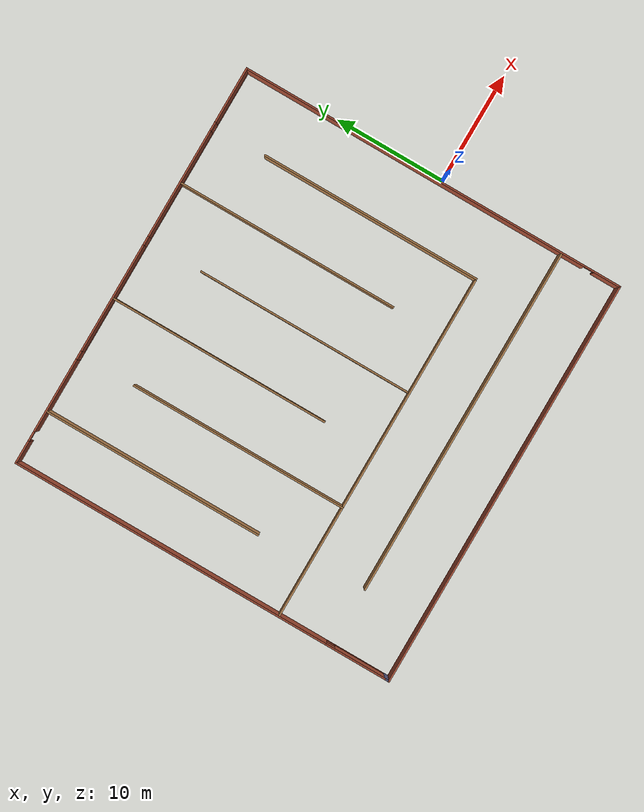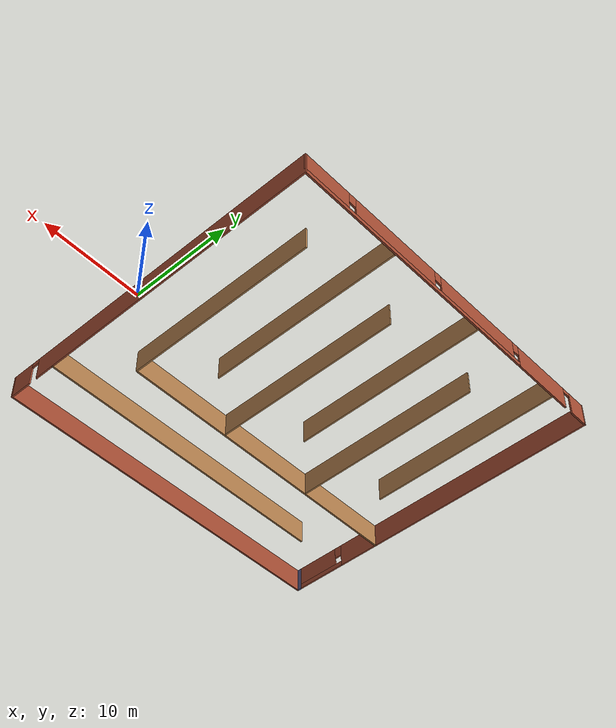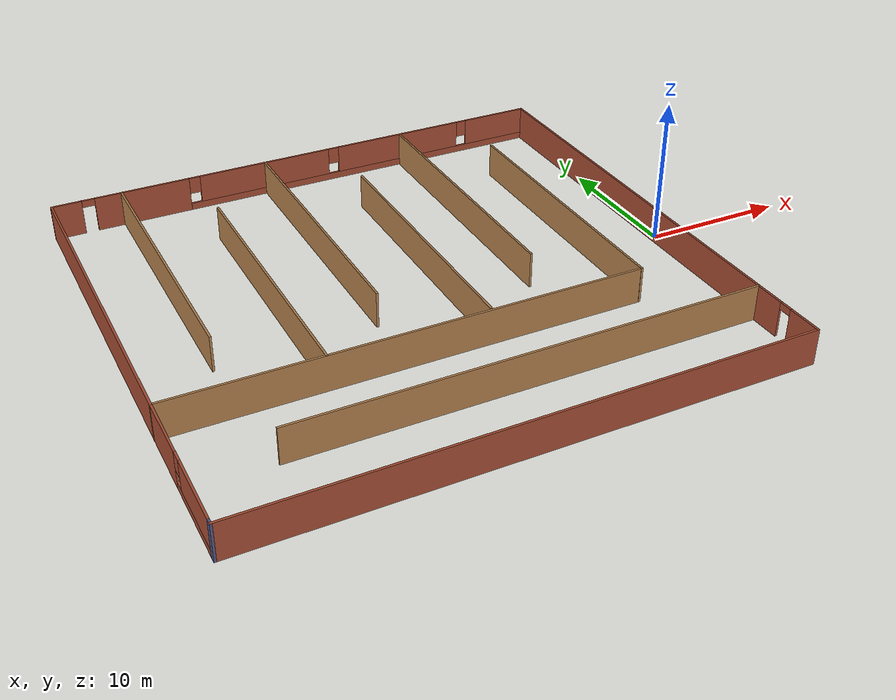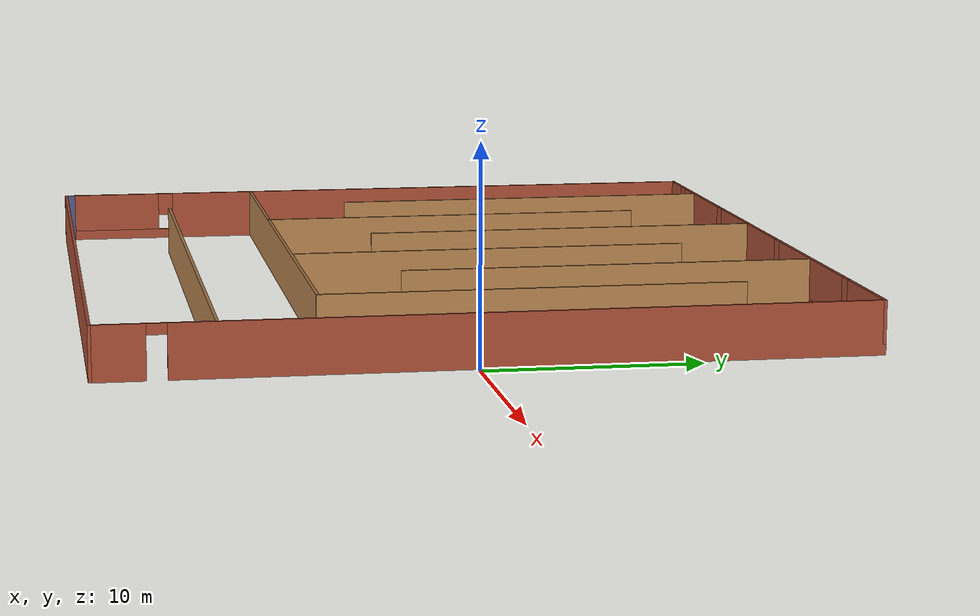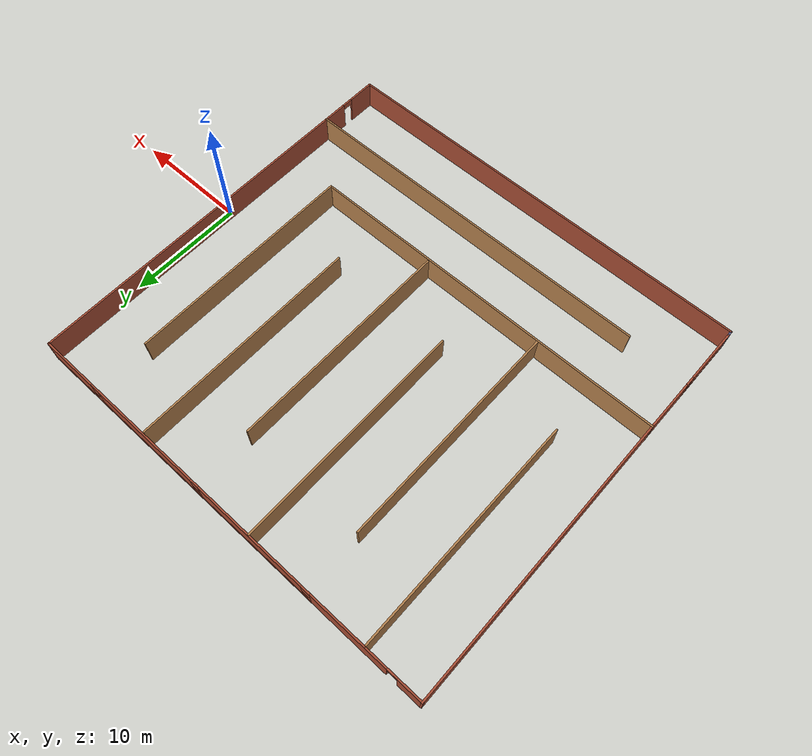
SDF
<?xml version='1.0'?>
<sdf version='1.6'>
  <model name='Building1'>
    <pose frame=''>-18.9642 0.793478 0 0 -0 0</pose>
    <link name='Wall_135'>
      <pose frame=''>0.005428 17.55 0 0 -0 0</pose>
      <visual name='Wall_135_Visual_0'>
        <pose frame=''>-17.5623 0 1.25 0 -0 0</pose>
        <geometry>
          <box>
            <size>2.12549 0.15 2.5</size>
          </box>
        </geometry>
        <material>
          <script>
            <uri>file://media/materials/scripts/gazebo.material</uri>
            <name>Gazebo/Bricks</name>
          </script>
          <ambient>0.333333 0.333333 0.498039 1</ambient>
        </material>
        <meta>
          <layer>0</layer>
        </meta>
      </visual>
      <collision name='Wall_135_Collision_0'>
        <geometry>
          <box>
            <size>2.12549 0.15 2.5</size>
          </box>
        </geometry>
        <pose frame=''>-17.5623 0 1.25 0 -0 0</pose>
      </collision>
      <visual name='Wall_135_Visual_1'>
        <pose frame=''>-12.2043 0 1.25 0 -0 0</pose>
        <geometry>
          <box>
            <size>6.79049 0.15 2.5</size>
          </box>
        </geometry>
        <material>
          <script>
            <uri>file://media/materials/scripts/gazebo.material</uri>
            <name>Gazebo/Bricks</name>
          </script>
          <ambient>0.333333 0.333333 0.498039 1</ambient>
        </material>
        <meta>
          <layer>0</layer>
        </meta>
      </visual>
      <collision name='Wall_135_Collision_1'>
        <geometry>
          <box>
            <size>6.79049 0.15 2.5</size>
          </box>
        </geometry>
        <pose frame=''>-12.2043 0 1.25 0 -0 0</pose>
      </collision>
      <visual name='Wall_135_Visual_2'>
        <pose frame=''>4.90799 0 0.25 0 -0 0</pose>
        <geometry>
          <box>
            <size>27.434 0.15 0.5</size>
          </box>
        </geometry>
        <material>
          <script>
            <uri>file://media/materials/scripts/gazebo.material</uri>
            <name>Gazebo/Bricks</name>
          </script>
          <ambient>0.333333 0.333333 0.498039 1</ambient>
        </material>
        <meta>
          <layer>0</layer>
        </meta>
      </visual>
      <collision name='Wall_135_Collision_2'>
        <geometry>
          <box>
            <size>27.434 0.15 0.5</size>
          </box>
        </geometry>
        <pose frame=''>4.90799 0 0.25 0 -0 0</pose>
      </collision>
      <visual name='Wall_135_Visual_3'>
        <pose frame=''>-3.02838 0 1.5 0 -0 0</pose>
        <geometry>
          <box>
            <size>9.96126 0.15 2</size>
          </box>
        </geometry>
        <material>
          <script>
            <uri>file://media/materials/scripts/gazebo.material</uri>
            <name>Gazebo/Bricks</name>
          </script>
          <ambient>0.333333 0.333333 0.498039 1</ambient>
        </material>
        <meta>
          <layer>0</layer>
        </meta>
      </visual>
      <collision name='Wall_135_Collision_3'>
        <geometry>
          <box>
            <size>9.96126 0.15 2</size>
          </box>
        </geometry>
        <pose frame=''>-3.02838 0 1.5 0 -0 0</pose>
      </collision>
      <visual name='Wall_135_Visual_4'>
        <pose frame=''>7.73288 0 1.5 0 -0 0</pose>
        <geometry>
          <box>
            <size>9.96126 0.15 2</size>
          </box>
        </geometry>
        <material>
          <script>
            <uri>file://media/materials/scripts/gazebo.material</uri>
            <name>Gazebo/Bricks</name>
          </script>
          <ambient>0.333333 0.333333 0.498039 1</ambient>
        </material>
        <meta>
          <layer>0</layer>
        </meta>
      </visual>
      <collision name='Wall_135_Collision_4'>
        <geometry>
          <box>
            <size>9.96126 0.15 2</size>
          </box>
        </geometry>
        <pose frame=''>7.73288 0 1.5 0 -0 0</pose>
      </collision>
      <visual name='Wall_135_Visual_5'>
        <pose frame=''>16.0693 0 1.5 0 -0 0</pose>
        <geometry>
          <box>
            <size>5.11148 0.15 2</size>
          </box>
        </geometry>
        <material>
          <script>
            <uri>file://media/materials/scripts/gazebo.material</uri>
            <name>Gazebo/Bricks</name>
          </script>
          <ambient>0.333333 0.333333 0.498039 1</ambient>
        </material>
        <meta>
          <layer>0</layer>
        </meta>
      </visual>
      <collision name='Wall_135_Collision_5'>
        <geometry>
          <box>
            <size>5.11148 0.15 2</size>
          </box>
        </geometry>
        <pose frame=''>16.0693 0 1.5 0 -0 0</pose>
      </collision>
      <visual name='Wall_135_Visual_6'>
        <pose frame=''>-8.40901 0 1.9 0 -0 0</pose>
        <geometry>
          <box>
            <size>0.8 0.15 1.2</size>
          </box>
        </geometry>
        <material>
          <script>
            <uri>file://media/materials/scripts/gazebo.material</uri>
            <name>Gazebo/Bricks</name>
          </script>
          <ambient>0.333333 0.333333 0.498039 1</ambient>
        </material>
        <meta>
          <layer>0</layer>
        </meta>
      </visual>
      <collision name='Wall_135_Collision_6'>
        <geometry>
          <box>
            <size>0.8 0.15 1.2</size>
          </box>
        </geometry>
        <pose frame=''>-8.40901 0 1.9 0 -0 0</pose>
      </collision>
      <visual name='Wall_135_Visual_7'>
        <pose frame=''>2.35225 0 1.9 0 -0 0</pose>
        <geometry>
          <box>
            <size>0.8 0.15 1.2</size>
          </box>
        </geometry>
        <material>
          <script>
            <uri>file://media/materials/scripts/gazebo.material</uri>
            <name>Gazebo/Bricks</name>
          </script>
          <ambient>0.333333 0.333333 0.498039 1</ambient>
        </material>
        <meta>
          <layer>0</layer>
        </meta>
      </visual>
      <collision name='Wall_135_Collision_7'>
        <geometry>
          <box>
            <size>0.8 0.15 1.2</size>
          </box>
        </geometry>
        <pose frame=''>2.35225 0 1.9 0 -0 0</pose>
      </collision>
      <visual name='Wall_135_Visual_8'>
        <pose frame=''>13.1135 0 1.9 0 -0 0</pose>
        <geometry>
          <box>
            <size>0.8 0.15 1.2</size>
          </box>
        </geometry>
        <material>
          <script>
            <uri>file://media/materials/scripts/gazebo.material</uri>
            <name>Gazebo/Bricks</name>
          </script>
          <ambient>0.333333 0.333333 0.498039 1</ambient>
        </material>
        <meta>
          <layer>0</layer>
        </meta>
      </visual>
      <collision name='Wall_135_Collision_8'>
        <geometry>
          <box>
            <size>0.8 0.15 1.2</size>
          </box>
        </geometry>
        <pose frame=''>13.1135 0 1.9 0 -0 0</pose>
      </collision>
      <visual name='Wall_135_Visual_9'>
        <pose frame=''>-16.0495 0 2.25 0 -0 0</pose>
        <geometry>
          <box>
            <size>0.9 0.15 0.5</size>
          </box>
        </geometry>
        <material>
          <script>
            <uri>file://media/materials/scripts/gazebo.material</uri>
            <name>Gazebo/Bricks</name>
          </script>
          <ambient>0.333333 0.333333 0.498039 1</ambient>
        </material>
        <meta>
          <layer>0</layer>
        </meta>
      </visual>
      <collision name='Wall_135_Collision_9'>
        <geometry>
          <box>
            <size>0.9 0.15 0.5</size>
          </box>
        </geometry>
        <pose frame=''>-16.0495 0 2.25 0 -0 0</pose>
      </collision>
    </link>
    <link name='Wall_138'>
      <collision name='Wall_138_Collision'>
        <geometry>
          <box>
            <size>20 0.15 2.5</size>
          </box>
        </geometry>
        <pose frame=''>0 0 1.25 0 -0 0</pose>
      </collision>
      <visual name='Wall_138_Visual'>
        <pose frame=''>0 0 1.25 0 -0 0</pose>
        <geometry>
          <box>
            <size>20 0.15 2.5</size>
          </box>
        </geometry>
        <material>
          <script>
            <uri>file://media/materials/scripts/gazebo.material</uri>
            <name>Gazebo/Wood</name>
          </script>
          <ambient>0.333333 0.333333 0.498039 1</ambient>
        </material>
        <meta>
          <layer>0</layer>
        </meta>
      </visual>
      <pose frame=''>-13.6766 7.55431 0 0 -0 -1.5708</pose>
    </link>
    <link name='Wall_140'>
      <collision name='Wall_140_Collision'>
        <geometry>
          <box>
            <size>19.75 0.15 2.5</size>
          </box>
        </geometry>
        <pose frame=''>0 0 1.25 0 -0 0</pose>
      </collision>
      <visual name='Wall_140_Visual'>
        <pose frame=''>0 0 1.25 0 -0 0</pose>
        <geometry>
          <box>
            <size>19.75 0.15 2.5</size>
          </box>
        </geometry>
        <material>
          <script>
            <uri>file://media/materials/scripts/gazebo.material</uri>
            <name>Gazebo/Wood</name>
          </script>
          <ambient>0.333333 0.333333 0.498039 1</ambient>
        </material>
        <meta>
          <layer>0</layer>
        </meta>
      </visual>
      <pose frame=''>-8.29597 2.63601 0 0 -0 1.5708</pose>
    </link>
    <link name='Wall_142'>
      <collision name='Wall_142_Collision'>
        <geometry>
          <box>
            <size>20 0.15 2.5</size>
          </box>
        </geometry>
        <pose frame=''>0 0 1.25 0 -0 0</pose>
      </collision>
      <visual name='Wall_142_Visual'>
        <pose frame=''>0 0 1.25 0 -0 0</pose>
        <geometry>
          <box>
            <size>20 0.15 2.5</size>
          </box>
        </geometry>
        <material>
          <script>
            <uri>file://media/materials/scripts/gazebo.material</uri>
            <name>Gazebo/Wood</name>
          </script>
          <ambient>0.333333 0.333333 0.498039 1</ambient>
        </material>
        <meta>
          <layer>0</layer>
        </meta>
      </visual>
      <pose frame=''>-3.02295 7.55431 0 0 -0 -1.5708</pose>
    </link>
    <link name='Wall_144'>
      <collision name='Wall_144_Collision'>
        <geometry>
          <box>
            <size>19.5 0.15 2.5</size>
          </box>
        </geometry>
        <pose frame=''>0 0 1.25 0 -0 0</pose>
      </collision>
      <visual name='Wall_144_Visual'>
        <pose frame=''>0 0 1.25 0 -0 0</pose>
        <geometry>
          <box>
            <size>19.5 0.15 2.5</size>
          </box>
        </geometry>
        <material>
          <script>
            <uri>file://media/materials/scripts/gazebo.material</uri>
            <name>Gazebo/Wood</name>
          </script>
          <ambient>0.333333 0.333333 0.498039 1</ambient>
        </material>
        <meta>
          <layer>0</layer>
        </meta>
      </visual>
      <pose frame=''>2.46529 2.72624 0 0 -0 1.5708</pose>
    </link>
    <link name='Wall_146'>
      <collision name='Wall_146_Collision'>
        <geometry>
          <box>
            <size>20 0.15 2.5</size>
          </box>
        </geometry>
        <pose frame=''>0 0 1.25 0 -0 0</pose>
      </collision>
      <visual name='Wall_146_Visual'>
        <pose frame=''>0 0 1.25 0 -0 0</pose>
        <geometry>
          <box>
            <size>20 0.15 2.5</size>
          </box>
        </geometry>
        <material>
          <script>
            <uri>file://media/materials/scripts/gazebo.material</uri>
            <name>Gazebo/Wood</name>
          </script>
          <ambient>0.333333 0.333333 0.498039 1</ambient>
        </material>
        <meta>
          <layer>0</layer>
        </meta>
      </visual>
      <pose frame=''>7.84593 7.44669 0 0 -0 -1.5708</pose>
    </link>
    <link name='Wall_149'>
      <collision name='Wall_149_Collision'>
        <geometry>
          <box>
            <size>20 0.15 2.5</size>
          </box>
        </geometry>
        <pose frame=''>0 0 1.25 0 -0 0</pose>
      </collision>
      <visual name='Wall_149_Visual'>
        <pose frame=''>0 0 1.25 0 -0 0</pose>
        <geometry>
          <box>
            <size>20 0.15 2.5</size>
          </box>
        </geometry>
        <material>
          <script>
            <uri>file://media/materials/scripts/gazebo.material</uri>
            <name>Gazebo/Wood</name>
          </script>
          <ambient>0.333333 0.333333 0.498039 1</ambient>
        </material>
        <meta>
          <layer>0</layer>
        </meta>
      </visual>
      <pose frame=''>13.2266 2.76101 0 0 -0 1.5708</pose>
    </link>
    <link name='Wall_152'>
      <pose frame=''>18.5554 0 0 0 -0 -1.5708</pose>
      <visual name='Wall_152_Visual_0'>
        <pose frame=''>-1.68906 0 1.25 0 -0 0</pose>
        <geometry>
          <box>
            <size>31.8719 0.15 2.5</size>
          </box>
        </geometry>
        <material>
          <script>
            <uri>file://media/materials/scripts/gazebo.material</uri>
            <name>Gazebo/Bricks</name>
          </script>
          <ambient>0.333333 0.333333 0.498039 1</ambient>
        </material>
        <meta>
          <layer>0</layer>
        </meta>
      </visual>
      <collision name='Wall_152_Collision_0'>
        <geometry>
          <box>
            <size>31.8719 0.15 2.5</size>
          </box>
        </geometry>
        <pose frame=''>-1.68906 0 1.25 0 -0 0</pose>
      </collision>
      <visual name='Wall_152_Visual_1'>
        <pose frame=''>16.3859 0 1.25 0 -0 0</pose>
        <geometry>
          <box>
            <size>2.47813 0.15 2.5</size>
          </box>
        </geometry>
        <material>
          <script>
            <uri>file://media/materials/scripts/gazebo.material</uri>
            <name>Gazebo/Bricks</name>
          </script>
          <ambient>0.333333 0.333333 0.498039 1</ambient>
        </material>
        <meta>
          <layer>0</layer>
        </meta>
      </visual>
      <collision name='Wall_152_Collision_1'>
        <geometry>
          <box>
            <size>2.47813 0.15 2.5</size>
          </box>
        </geometry>
        <pose frame=''>16.3859 0 1.25 0 -0 0</pose>
      </collision>
      <visual name='Wall_152_Visual_2'>
        <pose frame=''>14.6969 0 2.25 0 -0 0</pose>
        <geometry>
          <box>
            <size>0.9 0.15 0.5</size>
          </box>
        </geometry>
        <material>
          <script>
            <uri>file://media/materials/scripts/gazebo.material</uri>
            <name>Gazebo/Bricks</name>
          </script>
          <ambient>0.333333 0.333333 0.498039 1</ambient>
        </material>
        <meta>
          <layer>0</layer>
        </meta>
      </visual>
      <collision name='Wall_152_Collision_2'>
        <geometry>
          <box>
            <size>0.9 0.15 0.5</size>
          </box>
        </geometry>
        <pose frame=''>14.6969 0 2.25 0 -0 0</pose>
      </collision>
    </link>
    <link name='Wall_153'>
      <collision name='Wall_153_Collision'>
        <geometry>
          <box>
            <size>37.25 0.15 2.5</size>
          </box>
        </geometry>
        <pose frame=''>0 0 1.25 0 -0 0</pose>
      </collision>
      <visual name='Wall_153_Visual'>
        <pose frame=''>0 0 1.25 0 -0 0</pose>
        <geometry>
          <box>
            <size>37.25 0.15 2.5</size>
          </box>
        </geometry>
        <material>
          <script>
            <uri>file://media/materials/scripts/gazebo.material</uri>
            <name>Gazebo/Bricks</name>
          </script>
          <ambient>0.333333 0.333333 0.498039 1</ambient>
        </material>
        <meta>
          <layer>0</layer>
        </meta>
      </visual>
      <pose frame=''>0.005428 -17.55 0 0 -0 3.14159</pose>
    </link>
    <link name='Wall_154'>
      <collision name='Wall_154_Collision'>
        <geometry>
          <box>
            <size>0.55 0.15 2.5</size>
          </box>
        </geometry>
        <pose frame=''>0 0 1.25 0 -0 0</pose>
      </collision>
      <visual name='Wall_154_Visual'>
        <pose frame=''>0 0 1.25 0 -0 0</pose>
        <geometry>
          <box>
            <size>0.55 0.15 2.5</size>
          </box>
        </geometry>
        <material>
          <script>
            <uri>file://media/materials/scripts/gazebo.material</uri>
            <name>Gazebo/Grey</name>
          </script>
          <ambient>0.333333 0.333333 0.498039 1</ambient>
        </material>
        <meta>
          <layer>0</layer>
        </meta>
      </visual>
      <pose frame=''>-18.5446 -17.35 0 0 -0 1.5708</pose>
    </link>
    <link name='Wall_156'>
      <collision name='Wall_156_Collision'>
        <geometry>
          <box>
            <size>31.75 0.15 2.5</size>
          </box>
        </geometry>
        <pose frame=''>0 0 1.25 0 -0 0</pose>
      </collision>
      <visual name='Wall_156_Visual'>
        <pose frame=''>0 0 1.25 0 -0 0</pose>
        <geometry>
          <box>
            <size>31.75 0.15 2.5</size>
          </box>
        </geometry>
        <material>
          <script>
            <uri>file://media/materials/scripts/gazebo.material</uri>
            <name>Gazebo/Wood</name>
          </script>
          <ambient>0.333333 0.333333 0.498039 1</ambient>
        </material>
        <meta>
          <layer>0</layer>
        </meta>
      </visual>
      <pose frame=''>2.69958 -12.1142 0 0 -0 3.14159</pose>
    </link>
    <link name='Wall_47'>
      <pose frame=''>-18.5446 0.2 0 0 -0 -1.5708</pose>
      <visual name='Wall_47_Visual_0'>
        <pose frame=''>-2.80922 0 1.25 0 -0 0</pose>
        <geometry>
          <box>
            <size>29.2316 0.15 2.5</size>
          </box>
        </geometry>
        <material>
          <script>
            <uri>file://media/materials/scripts/gazebo.material</uri>
            <name>Gazebo/Bricks</name>
          </script>
          <ambient>0.333333 0.333333 0.498039 1</ambient>
        </material>
        <meta>
          <layer>0</layer>
        </meta>
      </visual>
      <collision name='Wall_47_Collision_0'>
        <geometry>
          <box>
            <size>29.2316 0.15 2.5</size>
          </box>
        </geometry>
        <pose frame=''>-2.80922 0 1.25 0 -0 0</pose>
      </collision>
      <visual name='Wall_47_Visual_1'>
        <pose frame=''>14.6158 0 0.25 0 -0 0</pose>
        <geometry>
          <box>
            <size>5.61844 0.15 0.5</size>
          </box>
        </geometry>
        <material>
          <script>
            <uri>file://media/materials/scripts/gazebo.material</uri>
            <name>Gazebo/Bricks</name>
          </script>
          <ambient>0.333333 0.333333 0.498039 1</ambient>
        </material>
        <meta>
          <layer>0</layer>
        </meta>
      </visual>
      <collision name='Wall_47_Collision_1'>
        <geometry>
          <box>
            <size>5.61844 0.15 0.5</size>
          </box>
        </geometry>
        <pose frame=''>14.6158 0 0.25 0 -0 0</pose>
      </collision>
      <visual name='Wall_47_Visual_2'>
        <pose frame=''>15.0158 0 1.5 0 -0 0</pose>
        <geometry>
          <box>
            <size>4.81844 0.15 2</size>
          </box>
        </geometry>
        <material>
          <script>
            <uri>file://media/materials/scripts/gazebo.material</uri>
            <name>Gazebo/Bricks</name>
          </script>
          <ambient>0.333333 0.333333 0.498039 1</ambient>
        </material>
        <meta>
          <layer>0</layer>
        </meta>
      </visual>
      <collision name='Wall_47_Collision_2'>
        <geometry>
          <box>
            <size>4.81844 0.15 2</size>
          </box>
        </geometry>
        <pose frame=''>15.0158 0 1.5 0 -0 0</pose>
      </collision>
      <visual name='Wall_47_Visual_3'>
        <pose frame=''>12.2066 0 1.9 0 -0 0</pose>
        <geometry>
          <box>
            <size>0.8 0.15 1.2</size>
          </box>
        </geometry>
        <material>
          <script>
            <uri>file://media/materials/scripts/gazebo.material</uri>
            <name>Gazebo/Bricks</name>
          </script>
          <ambient>0.333333 0.333333 0.498039 1</ambient>
        </material>
        <meta>
          <layer>0</layer>
        </meta>
      </visual>
      <collision name='Wall_47_Collision_3'>
        <geometry>
          <box>
            <size>0.8 0.15 1.2</size>
          </box>
        </geometry>
        <pose frame=''>12.2066 0 1.9 0 -0 0</pose>
      </collision>
    </link>
    <link name='Wall_68'>
      <collision name='Wall_68_Collision'>
        <geometry>
          <box>
            <size>31.75 0.15 2.5</size>
          </box>
        </geometry>
        <pose frame=''>0 0 1.25 0 -0 0</pose>
      </collision>
      <visual name='Wall_68_Visual'>
        <pose frame=''>0 0 1.25 0 -0 0</pose>
        <geometry>
          <box>
            <size>31.75 0.15 2.5</size>
          </box>
        </geometry>
        <material>
          <script>
            <uri>file://media/materials/scripts/gazebo.material</uri>
            <name>Gazebo/Wood</name>
          </script>
          <ambient>0.333333 0.333333 0.498039 1</ambient>
        </material>
        <meta>
          <layer>0</layer>
        </meta>
      </visual>
      <pose frame=''>-2.75543 -7.17891 0 0 -0 3.14159</pose>
    </link>
    <static>1</static>
  </model>
</sdf>
